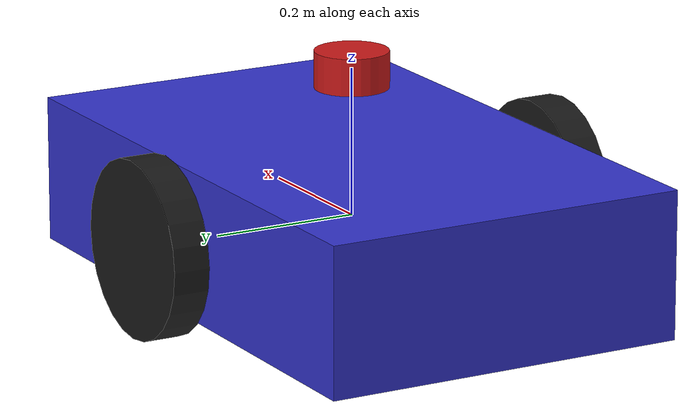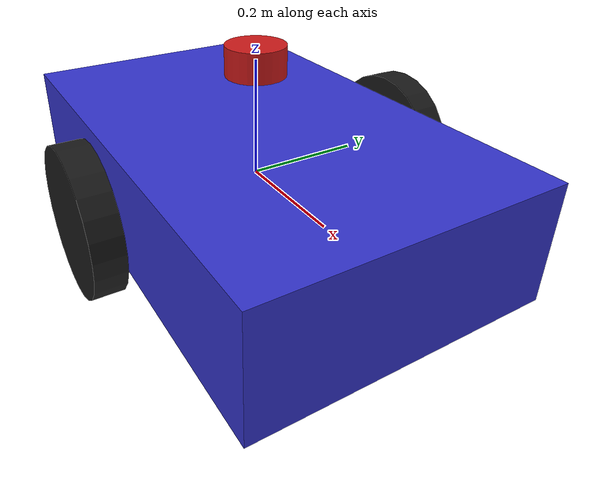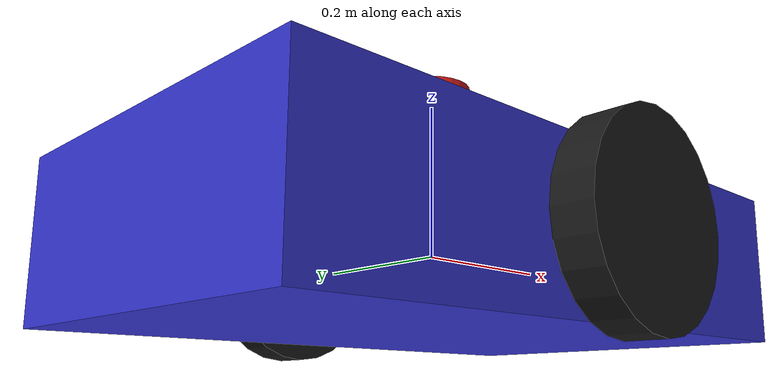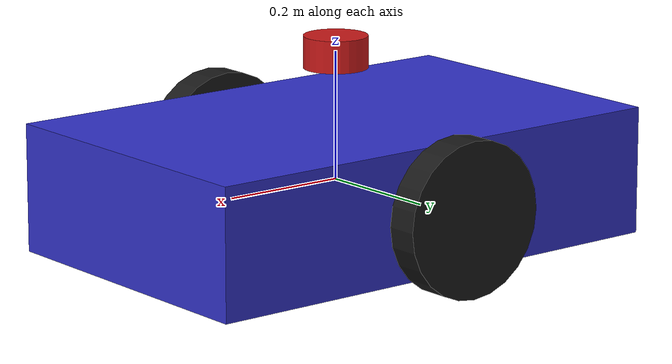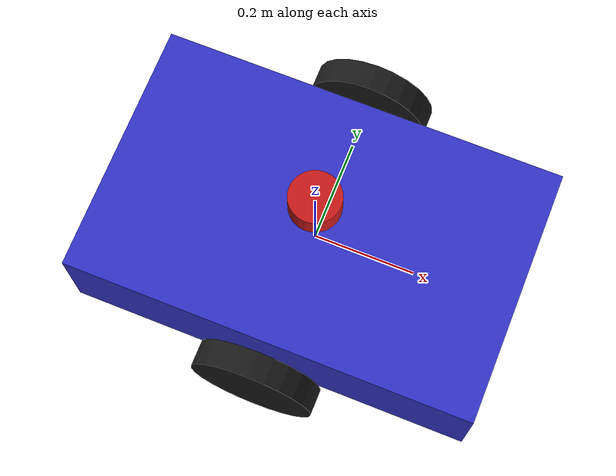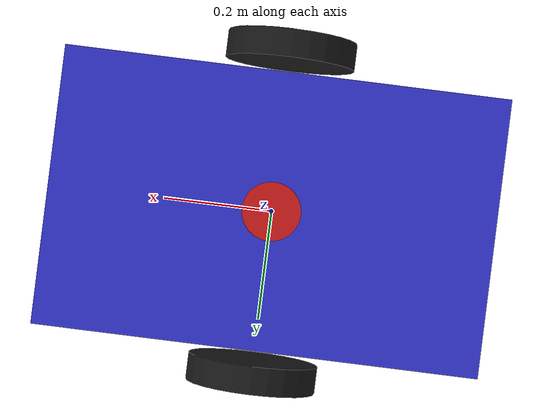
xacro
<?xml version="1.0"?>
<robot name="mobile_robot" xmlns:xacro="http://www.ros.org/wiki/xacro">

  <!-- Robot base -->
  <link name="base_link">
    <visual>
      <geometry>
        <box size="0.8 0.5 0.2"/>
      </geometry>
      <material name="blue">
        <color rgba="0.2 0.2 0.8 1"/>
      </material>
    </visual>
    <collision>
      <geometry>
        <box size="0.8 0.5 0.2"/>
      </geometry>
    </collision>
    <inertial>
      <mass value="5.0"/>
      <inertia ixx="0.1" ixy="0" ixz="0" iyy="0.1" iyz="0" izz="0.1"/>
    </inertial>
  </link>

  <!-- Wheel macro -->
  <xacro:macro name="wheel" params="prefix y x">
    <joint name="${prefix}_wheel_joint" type="continuous">
      <parent link="base_link"/>
      <child link="${prefix}_wheel"/>
      <origin xyz="${x} ${y} 0" rpy="1.57 0 0"/>
      <axis xyz="0 0 1"/>
    </joint>
    <link name="${prefix}_wheel">
      <visual>
        <geometry>
          <cylinder radius="0.12" length="0.05"/>
        </geometry>
        <material name="black">
          <color rgba="0.1 0.1 0.1 1"/>
        </material>
      </visual>
      <collision>
        <geometry>
          <cylinder radius="0.12" length="0.05"/>
        </geometry>
      </collision>
      <inertial>
        <mass value="1.0"/>
        <inertia ixx="0.01" ixy="0" ixz="0" iyy="0.01" iyz="0" izz="0.01"/>
      </inertial>
    </link>
  </xacro:macro>

  <!-- Left and right wheels -->
  <xacro:wheel prefix="left" y="0.3" x="0"/>
  <xacro:wheel prefix="right" y="-0.3" x="0"/>

  <!-- Lidar sensor -->
  <joint name="lidar_joint" type="fixed">
    <parent link="base_link"/>
    <child link="lidar_link"/>
    <origin xyz="0 0 0.2"/>
  </joint>
  <link name="lidar_link">
    <visual>
      <geometry>
        <cylinder radius="0.05" length="0.05"/>
      </geometry>
      <material name="red">
        <color rgba="0.8 0.1 0.1 1"/>
      </material>
    </visual>
  </link>

  <!-- Gazebo plugins - USING GAZEBO TOPICS (NO ROS BRIDGE NEEDED) -->
  <gazebo>
    <plugin filename="gz-sim-diff-drive-system" name="gz::sim::systems::DiffDrive">
      <left_joint>left_wheel_joint</left_joint>
      <right_joint>right_wheel_joint</right_joint>
      <wheel_separation>0.4</wheel_separation>
      <wheel_radius>0.1</wheel_radius>
      <!-- USE GAZEBO TOPICS - No /cmd_vel, uses /model/mobile_robot/cmd_vel -->
      <topic>/model/mobile_robot/cmd_vel</topic>
      <odom_topic>/model/mobile_robot/odometry</odom_topic>
      <frame_id>odom</frame_id>
      <child_frame_id>base_link</child_frame_id>
    </plugin>
    <plugin filename="gz-sim-sensors-system" name="gz::sim::systems::Sensors">
      <render_engine>ogre2</render_engine>
    </plugin>
  </gazebo>

  <!-- Lidar sensor configuration -->
  <gazebo reference="lidar_link">
    <sensor name="gpu_lidar" type="gpu_lidar">
      <update_rate>10</update_rate>
      <lidar>
        <scan>
          <horizontal>
            <samples>640</samples>
            <resolution>1</resolution>
            <min_angle>-3.14</min_angle>
            <max_angle>3.14</max_angle>
          </horizontal>
        </scan>
        <range>
          <min>0.1</min>
          <max>10.0</max>
        </range>
      </lidar>
      <always_on>1</always_on>
      <visualize>true</visualize>
      <topic>/model/mobile_robot/scan</topic>
      <gz_frame_id>lidar_link</gz_frame_id>
    </sensor>
  </gazebo>

  <!-- Material colors for Gazebo -->
  <gazebo reference="base_link">
    <material>Gazebo/Blue</material>
  </gazebo>
  <gazebo reference="left_wheel">
    <material>Gazebo/Black</material>
  </gazebo>
  <gazebo reference="right_wheel">
    <material>Gazebo/Black</material>
  </gazebo>
  <gazebo reference="lidar_link">
    <material>Gazebo/Red</material>
  </gazebo>

</robot>
